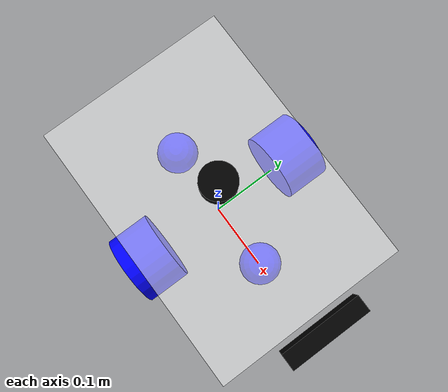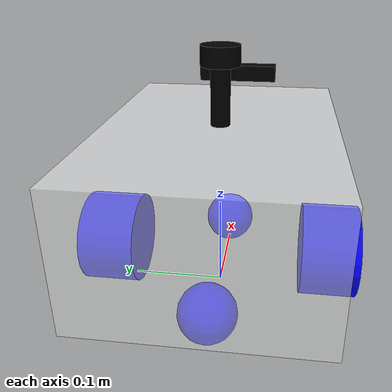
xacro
<?xml version="1.0"?>
<robot xmlns:xacro="http://wwww.ros.org/wiki/xacro" name="robot">

<!--基础部分 base_link-->
<xacro:include filename="$(find smart_community_sim)/urdf/robot/base.urdf.xacro"/>
<!--传感器部分 sensor-->
<xacro:include filename="$(find smart_community_sim)/urdf/robot/sensor/imu.urdf.xacro"/>
<xacro:include filename="$(find smart_community_sim)/urdf/robot/sensor/camera.urdf.xacro"/>
<xacro:include filename="$(find smart_community_sim)/urdf/robot/sensor/laser.urdf.xacro"/>
<!--执行器部分-->
<xacro:include filename="$(find smart_community_sim)/urdf/robot/actuator/wheel.urdf.xacro"/>
<xacro:include filename="$(find smart_community_sim)/urdf/robot/actuator/caster.urdf.xacro"/>
<!--插件-->
<xacro:include filename="$(find smart_community_sim)/urdf/robot/plugins/gazebo_control_plugin.xacro"/>
<xacro:include filename="$(find smart_community_sim)/urdf/robot/plugins/gazebo_sensor_plugin.xacro"/>
<xacro:include filename="$(find smart_community_sim)/urdf/robot/robot.ros2_control.xacro"/>

<!--调用上面包含的宏文件-->
<xacro:base_xacro />
<xacro:imu_xacro xyz="0.0 0.0 0.02"/>
<xacro:camera_xacro xyz="0.185 0.0 0.085"/>
<xacro:laser_xacro xyz="0.0 0.0 0.1"/>
<xacro:wheel_xacro wheel_name="left_wheel" xyz="0.0 0.12 -0.07"/>
<xacro:wheel_xacro wheel_name="right_wheel" xyz="0.0 -0.12 -0.07"/>
<xacro:caster_xacro caster_name="front_caster" xyz="0.1 0.0 -0.09"/>
<xacro:caster_xacro caster_name="back_caster" xyz="-0.1 0.0 -0.09"/>

<!--调用插件-->
<xacro:gazebo_sensor_plugin />
<xacro:robot_ros2_control/>

</robot>

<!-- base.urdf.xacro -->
<robot xmlns:xacro="http://wwww.ros.org/wiki/xacro" >
    <xacro:include filename="$(find smart_community_sim)/urdf/robot/common_inertia.xacro"/>

    <xacro:macro name="base_xacro" >
        <link name="base_footprint"/>

        <!--机器人的身体部分-->
        <link name="base_link">
            <!--部件的外观描述-->
            <visual>
                <!--沿着自己几何中心的偏移和旋转量-->
                <origin xyz="0.0 0.0 0.0" rpy="0.0 0.0 0.0"/>
                <!--几何形状-->
                <geometry>
                    <!-- 定义一个长方体：长(x) 宽(y) 高(z)，单位：米 -->
                    <box size="0.34 0.24 0.14"/>
                </geometry>
                <!--材质颜色-->
                <material name="white">
                    <color rgba="1.0 1.0 1.0 0.5"/>
                </material>
            </visual>

            <collision>
                <!--沿着自己几何中心的偏移和旋转量-->
                <origin xyz="0.0 0.0 0.0" rpy="0.0 0.0 0.0"/>
                <!--几何形状-->
                <geometry>
                    <!-- 定义一个长方体：长(x) 宽(y) 高(z)，单位：米 -->
                    <box size="0.34 0.24 0.14"/>
                </geometry>
                <!--材质颜色-->
                <material name="white">
                    <color rgba="1.0 1.0 1.0 0.5"/>
                </material>
            </collision>

            <!--添加质量与惯性-->
            <xacro:box_inertia m="2.0" w="0.34" h="0.24" d="0.14"/>

        </link>

        <joint name="joint_name" type="fixed">
            <origin xyz="0.0 0.0 0.119" rpy="0.0 0.0 0.0"/>
            <parent link="base_footprint"/>
            <child link="base_link"/>
        </joint>

        <!-- 基座 - 大地之稳（中性灰，中庸之基） -->
        <gazebo reference="base_link">
            <material>Gazebo/Gray</material>  <!-- 或 Gazebo/DarkGray -->
        </gazebo>

    </xacro:macro>

</robot>

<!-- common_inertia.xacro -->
<robot xmlns:xacro="http://ros.org/wiki/xacro">

<xacro:macro name="box_inertia" params="m w h d">
  <inertial>
    <mass value="${m}" />
    <inertia ixx="${(m/12) * (h*h + d*d)}" ixy="0.0" ixz="0.0" iyy="${(m/12) * (w*w + d*d)}" iyz="0.0" izz="${(m/12) * (w*w + h*h)}" />
  </inertial>
</xacro:macro>

<xacro:macro name="cylinder_inertia" params="m r h">
  <inertial>
    <mass value="${m}" />
    <inertia ixx="${(m/12) * (3*r*r + h*h)}" ixy="0" ixz="0" iyy="${(m/12) * (3*r*r + h*h)}" iyz="0" izz="${(m/2) * (r*r)}" />
  </inertial>
</xacro:macro>

<xacro:macro name="sphere_inertia" params="m r">
  <inertial>
    <mass value="${m}" />
    <inertia ixx="${(2/5) * m * (r*r)}" ixy="0.0" ixz="0.0" iyy="${(2/5) * m * (r*r)}" iyz="0.0" izz="${(2/5) * m * (r*r)}" />
  </inertial>
</xacro:macro>

</robot>

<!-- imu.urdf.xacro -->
<robot xmlns:xacro="http://wwww.ros.org/wiki/xacro" >
    <xacro:include filename="$(find smart_community_sim)/urdf/robot/common_inertia.xacro"/>

    <xacro:macro name="imu_xacro" params="xyz">
    <!--机器人的IMU部件，惯性测量传感器-->
    <link name="imu_link">
        <!--部件的外观描述-->
        <visual>
            <!--沿着自己几何中心的偏移和旋转量-->
            <origin xyz="0.0 0.0 0.0" rpy="0.0 0.0 0.0"/>
            <!--几何形状-->
            <geometry>
                <!-- 定义一个正方体：长(x) 宽(y) 高(z)，单位：米 -->
                <box size="0.02 0.02 0.02"/>
            </geometry>
            <!--材质颜色-->
            <material name="black">
                <color rgba="0.0 0.0 0.0 0.5"/>
            </material>
        </visual>

        <!--添加碰撞属性-->
        <collision>
            <!--沿着自己几何中心的偏移和旋转量-->
            <origin xyz="0.0 0.0 0.0" rpy="0.0 0.0 0.0"/>
            <!--几何形状-->
            <geometry>
                <!-- 定义一个正方体：长(x) 宽(y) 高(z)，单位：米 -->
                <box size="0.02 0.02 0.02"/>
            </geometry>
            <!--材质颜色-->
            <material name="black">
                <color rgba="0.0 0.0 0.0 0.5"/>
            </material>
        </collision>

        <!--添加质量与惯性-->
        <xacro:box_inertia m="0.05" w="0.02" h="0.02" d="0.02"/>
    </link>

    <!--机器人的关节，用于组合机器人的部件-->
    <joint name="imu_joint" type="fixed">
        <origin xyz="${xyz}" rpy="0.0 0.0 0.0"/>
        <parent link="base_link"/>
        <child link="imu_link"/>
    </joint>

    <!-- 姿态传感器 - 同视觉传感器 -->
    <gazebo reference="imu_link">
        <material>Gazebo/LightGray</material>
    </gazebo>

    </xacro:macro>

</robot>

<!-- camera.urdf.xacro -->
<robot xmlns:xacro="http://wwww.ros.org/wiki/xacro" >
    <xacro:include filename="$(find smart_community_sim)/urdf/robot/common_inertia.xacro"/>

    <xacro:macro name="camera_xacro" params="xyz">
    <!--机器人的相机部件-->
    <link name="camera_link">
        <!--部件的外观描述-->
        <visual>
            <!--沿着自己几何中心的偏移和旋转量-->
            <origin xyz="0.0 0.0 0.0" rpy="0.0 0.0 0.0"/>
            <!--几何形状-->
            <geometry>
                <!-- 定义一个正方体：长(x) 宽(y) 高(z)，单位：米 -->
                <box size="0.02 0.10 0.02"/>
            </geometry>
            <!--材质颜色-->
            <material name="black">
                <color rgba="0.0 0.0 0.0 1.0"/>
            </material>
        </visual>

        <!--添加碰撞属性-->
        <collision>
            <!--沿着自己几何中心的偏移和旋转量-->
            <origin xyz="0.0 0.0 0.0" rpy="0.0 0.0 0.0"/>
            <!--几何形状-->
            <geometry>
                <!-- 定义一个正方体：长(x) 宽(y) 高(z)，单位：米 -->
                <box size="0.02 0.10 0.02"/>
            </geometry>
            <!--材质颜色-->
            <material name="black">
                <color rgba="0.0 0.0 0.0 1.0"/>
            </material>
        </collision>

        <!--添加质量与惯性-->
        <xacro:box_inertia m="0.1" w="0.02" h="0.10" d="0.02"/>
    </link>

    <!--添加相机虚拟部件，修正位姿-->
    <link name="camera_optical_link"></link>

    <!--机器人的关节，用于组合机器人的部件-->
    <joint name="camera_joint" type="fixed">
        <origin xyz="${xyz}" rpy="0.0 0.0 0.0"/>
        <parent link="base_link"/>
        <child link="camera_link"/>
    </joint>

    <!--添加虚拟关节-->
    <joint name="camera_optical_joint" type="fixed">
        <parent link="camera_link"/>
        <child link="camera_optical_link"/>
        <origin xyz="0 0 0" rpy="${-pi/2} 0.0 ${-pi/2}"/>
    </joint>

    <!-- 视觉传感器 - 可用较浅色，但不过分抢眼 -->
    <gazebo reference="camera_link">
        <material>Gazebo/LightGray</material>  <!-- 或保留为 Gazebo/Gray -->
    </gazebo>

    </xacro:macro>

</robot>

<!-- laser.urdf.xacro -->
<robot xmlns:xacro="http://wwww.ros.org/wiki/xacro" >
    <xacro:include filename="$(find smart_community_sim)/urdf/robot/common_inertia.xacro"/>

    <xacro:macro name="laser_xacro" params="xyz">
    <!--雷达支撑杆-->
    <link name="laser_cylinder_link">
        <!--部件的外观描述-->
        <visual>
            <!--沿着自己几何中心的偏移和旋转量-->
            <origin xyz="0.0 0.0 0.0" rpy="0.0 0.0 0.0"/>
            <!--几何形状-->
            <geometry>
                <!-- 定义一个圆柱：地面半径radius 高度length，单位：米 -->
                <cylinder radius="0.01" length="0.06"/>
            </geometry>
            <!--材质颜色-->
            <material name="black">
                <color rgba="0.0 0.0 0.0 1.0"/>
            </material>
        </visual>

        <!--添加碰撞属性-->
        <collision>
            <!--沿着自己几何中心的偏移和旋转量-->
            <origin xyz="0.0 0.0 0.0" rpy="0.0 0.0 0.0"/>
            <!--几何形状-->
            <geometry>
                <!-- 定义一个圆柱：地面半径radius 高度length，单位：米 -->
                <cylinder radius="0.01" length="0.06"/>
            </geometry>
            <!--材质颜色-->
            <material name="black">
                <color rgba="0.0 0.0 0.0 1.0"/>
            </material>
        </collision>

        <!--添加质量与惯性-->
        <xacro:cylinder_inertia m="0.05" r="0.01" h="0.06"/>
    </link>

    <!--雷达-->
    <link name="laser_link">
        <!--部件的外观描述-->
        <visual>
            <!--沿着自己几何中心的偏移和旋转量-->
            <origin xyz="0.0 0.0 0.0" rpy="0.0 0.0 0.0"/>
            <!--几何形状-->
            <geometry>
                <!-- 定义一个圆柱：地面半径radius 高度length，单位：米 -->
                <cylinder radius="0.02" length="0.02"/>
            </geometry>
            <!--材质颜色-->
            <material name="black">
                <color rgba="0.0 0.0 0.0 1.0"/>
            </material>
        </visual>

        <!--添加碰撞属性-->
        <collision>
            <!--沿着自己几何中心的偏移和旋转量-->
            <origin xyz="0.0 0.0 0.0" rpy="0.0 0.0 0.0"/>
            <!--几何形状-->
            <geometry>
                <!-- 定义一个圆柱：地面半径radius 高度length，单位：米 -->
                <cylinder radius="0.02" length="0.02"/>
            </geometry>
            <!--材质颜色-->
            <material name="black">
                <color rgba="0.0 0.0 0.0 1.0"/>
            </material>
        </collision>

        <!--添加质量与惯性-->
        <xacro:cylinder_inertia m="0.10" r="0.02" h="0.02"/>
    </link>

    <!--机器人的关节，用于组合机器人的部件-->
    <joint name="laser_joint" type="fixed">
        <parent link="laser_cylinder_link"/>
        <child link="laser_link"/>
        <origin xyz="0.0 0.0 0.04" rpy="0.0 0.0 0.0"/>
    </joint>

    <joint name="laser_cylinder_joint" type="fixed">
        <parent link="base_link"/>
        <child link="laser_cylinder_link"/>
        <origin xyz="${xyz}" rpy="0.0 0.0 0.0"/>
    </joint>

    <!-- 激光雷达 - 与视觉略有区分 -->
    <gazebo reference="laser_link">
        <material>Gazebo/DarkGray</material>
    </gazebo>

    <gazebo reference="laser_cylinder_link">
        <material>Gazebo/DarkGray</material>
    </gazebo>

    </xacro:macro>

</robot>

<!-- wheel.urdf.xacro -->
<robot xmlns:xacro="http://wwww.ros.org/wiki/xacro" >
    <xacro:include filename="$(find smart_community_sim)/urdf/robot/common_inertia.xacro"/>

    <xacro:macro name="wheel_xacro" params="wheel_name xyz">
    <!--机器人的IMU部件，惯性测量传感器-->
    <link name="${wheel_name}_link">
        <!--部件的外观描述-->
        <visual>
            <!--沿着自己几何中心的偏移和旋转量-->
            <origin xyz="0.0 0.0 0.0" rpy="1.57079 0.0 0.0"/>
            <!--几何形状-->
            <geometry>
                <cylinder radius="0.05" length="0.06"/>
            </geometry>
            <!--材质颜色-->
            <material name="blue">
                <color rgba="0.0 0.0 1.0 0.9"/>
            </material>
        </visual>

        <!--添加碰撞属性-->
        <collision>
            <!--沿着自己几何中心的偏移和旋转量-->
            <origin xyz="0.0 0.0 0.0" rpy="1.57079 0.0 0.0"/>
            <!--几何形状-->
            <geometry>
                <cylinder radius="0.05" length="0.06"/>
            </geometry>
            <!--材质颜色-->
            <material name="blue">
                <color rgba="0.0 0.0 1.0 0.9"/>
            </material>
        </collision>

        <!--添加质量与惯性-->
        <xacro:cylinder_inertia m="0.5" r="0.05" h="0.06"/>
    </link>

    <!--机器人的关节，用于组合机器人的部件-->
    <joint name="${wheel_name}_joint" type="continuous">
        <parent link="base_link"/>
        <child link="${wheel_name}_link"/>
        <origin xyz="${xyz}" rpy="0.0 0.0 0.0"/>
        <axis xyz="0.0 1.0 0.0"/>
    </joint>

    <!-- 2. 轮子 - 实用之改（用浅灰代替纯白，符合中庸的“折中”思想） -->
    <gazebo reference="${wheel_name}_link">
        <material>Gazebo/LightGray</material>  <!-- 推荐：浅灰色，非纯白 -->
        <diffuse>0.9 0.9 0.9 1</diffuse>
    </gazebo>

    <gazebo reference="${wheel_name}_link">
        <mu1 value="20.0"/>
        <mu2 value="20.0"/>
        <kp value="1000000000.0"/>
        <kd value="1.0"/>
    </gazebo>

    </xacro:macro>

</robot>

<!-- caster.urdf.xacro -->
<robot xmlns:xacro="http://wwww.ros.org/wiki/xacro" >
    <xacro:include filename="$(find smart_community_sim)/urdf/robot/common_inertia.xacro"/>

    <xacro:macro name="caster_xacro" params="caster_name xyz">
    <!--机器人的IMU部件，惯性测量传感器-->
    <link name="${caster_name}_link">
        <!--部件的外观描述-->
        <visual>
            <!--沿着自己几何中心的偏移和旋转量-->
            <origin xyz="0.0 0.0 0.0" rpy="0.0 0.0 0.0"/>
            <!--几何形状-->
            <geometry>
                <sphere radius="0.03"/>
            </geometry>
            <!--材质颜色-->
            <material name="blue">
                <color rgba="0.0 0.0 1.0 0.9"/>
            </material>
        </visual>

        <!--添加碰撞属性-->
        <collision>
            <!--沿着自己几何中心的偏移和旋转量-->
            <origin xyz="0.0 0.0 0.0" rpy="0.0 0.0 0.0"/>
            <!--几何形状-->
            <geometry>
                <sphere radius="0.03"/>
            </geometry>
            <!--材质颜色-->
            <material name="blue">
                <color rgba="0.0 0.0 1.0 0.9"/>
            </material>
        </collision>

        <!--添加质量与惯性-->
        <xacro:sphere_inertia m="0.05" r="0.03" />
    </link>

    <!--机器人的关节，用于组合机器人的部件-->
    <joint name="${caster_name}_joint" type="fixed">
        <parent link="base_link"/>
        <child link="${caster_name}_link"/>
        <origin xyz="${xyz}" rpy="0.0 0.0 0.0"/>
    </joint>

    <!-- 移动部件 - 实用之实（亚光黑，功能为本） -->
    <gazebo reference="${caster_name}_link">
        <material>Gazebo/Black</material>
    </gazebo>

    <gazebo reference="${caster_name}_link">
        <mu1 value="0.0"/>
        <mu2 value="0.0"/>
        <kp value="1000000000.0"/>
        <kd value="1.0"/>
    </gazebo>

    </xacro:macro>

</robot>
